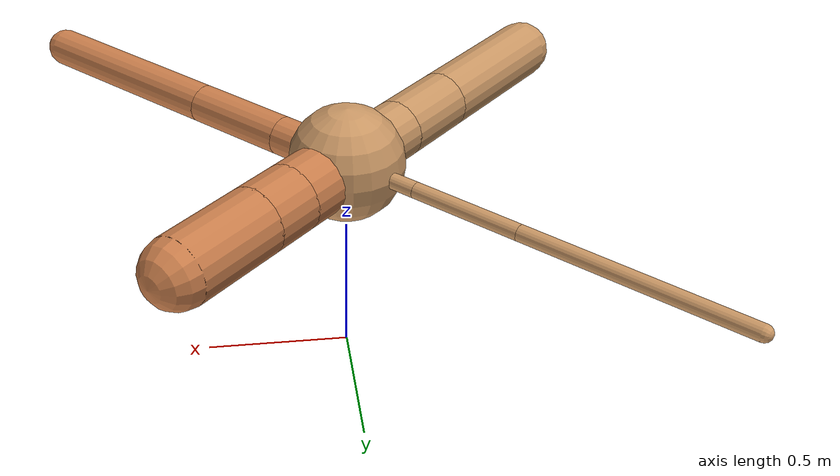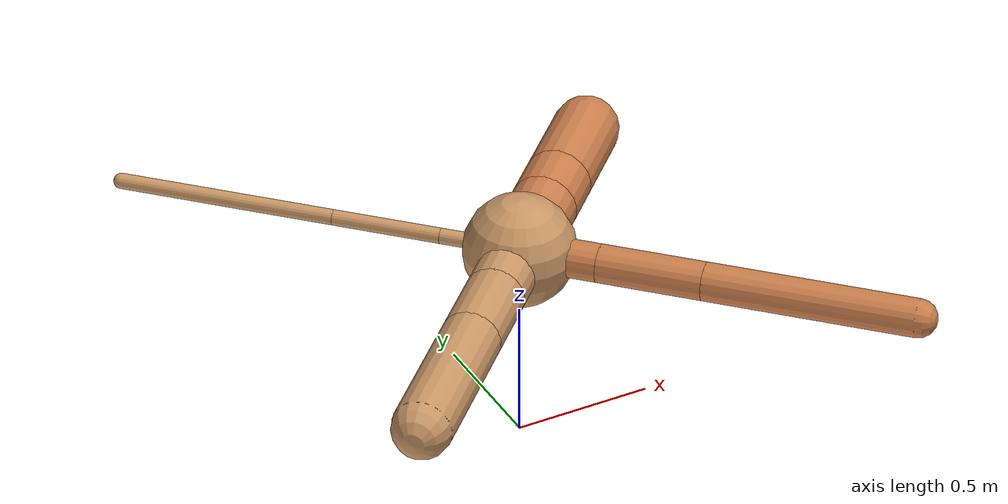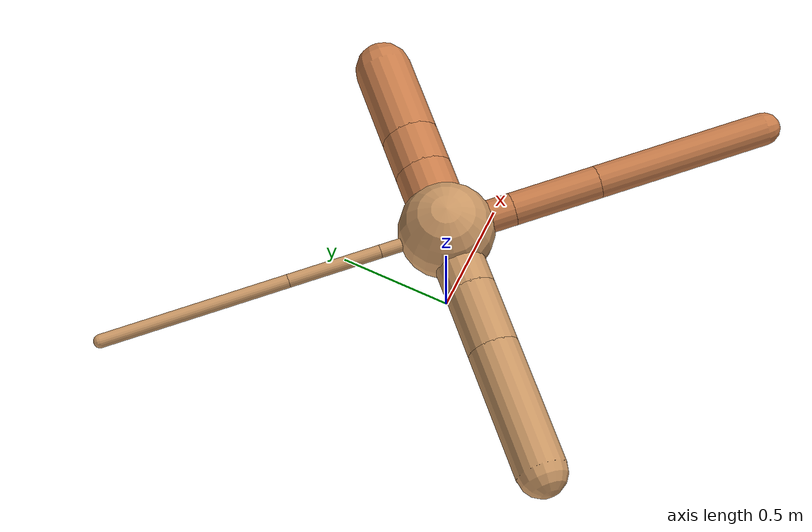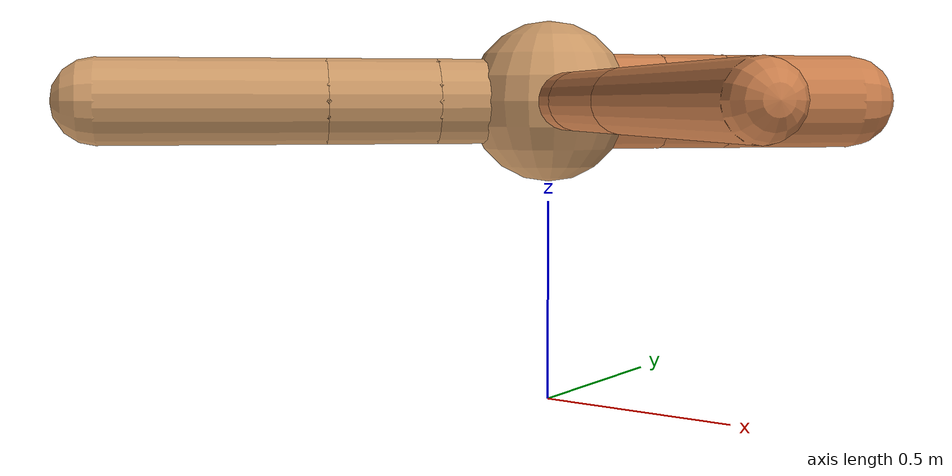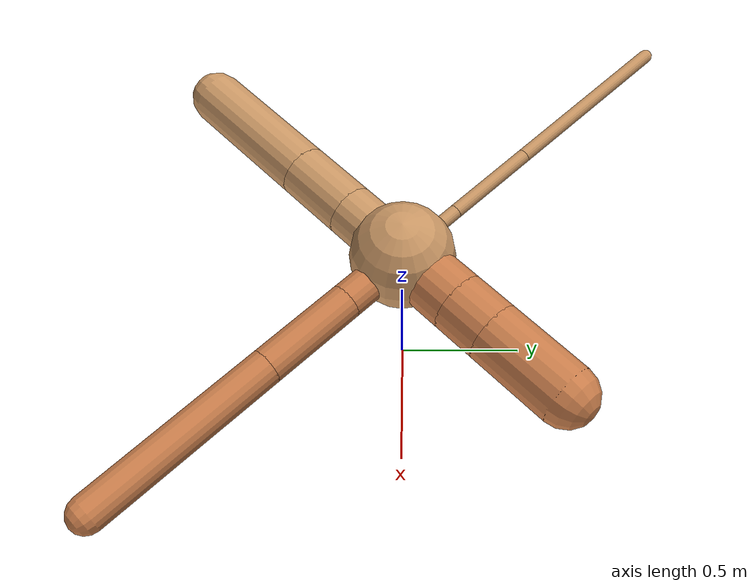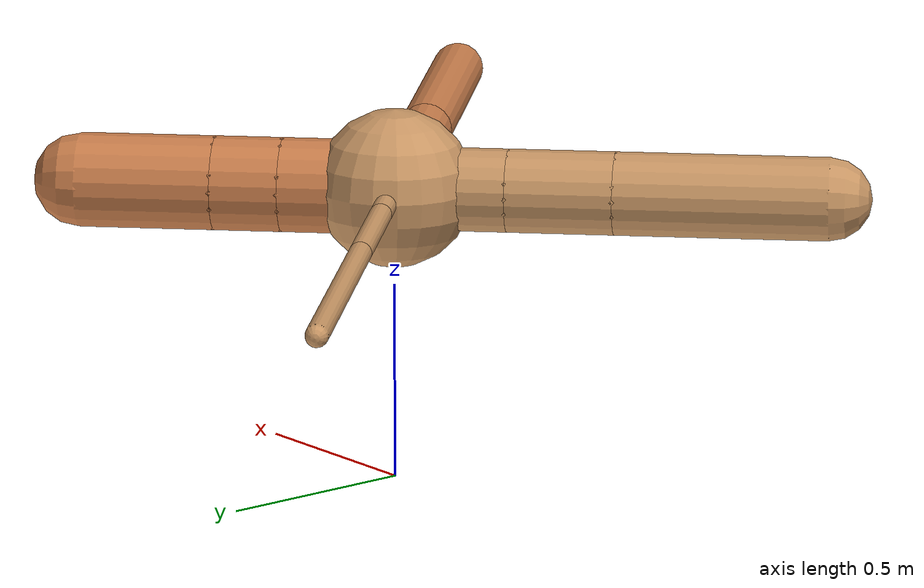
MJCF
<?xml version="1.0" ?>
<mujoco model="ant">

	<compiler angle="degree" coordinate="local" inertiafromgeom="true"/>

	<option integrator="RK4" timestep="0.01"/>

	<custom>

		<numeric data="0.0 0.0 0.55 1.0 0.0 0.0 0.0 0.0 1.0 0.0 -1.0 0.0 -1.0 0.0 1.0" name="init_qpos"/>

	</custom>

	<default>

		<joint armature="1" damping="1" limited="true"/>

		<geom conaffinity="0" condim="3" density="5.0" friction="1.5 0.1 0.1" margin="0.01" rgba="0.8 0.6 0.4 1"/>

	</default>

	<worldbody>

		<body name="torso" pos="0 0 0.75">

			<geom name="torso_geom" pos="0 0 0" size="0.19878786657040742" type="sphere"/>

			<!--joint armature="0" damping="0" limited="false" margin="0.01" name="root" pos="0 0 0" type="free"/-->

			<body name="front_left_leg" pos="0 0 0">

				<geom fromto="0 0 0 0.2 0.2 0" name="aux_1_geom" size="0.11857857079300711" type="capsule" rgba=".8 .5 .3 1"/>

				<body name="aux_1" pos="0.2 0.2 0">

					<joint axis="0 0 1" name="hip_1" pos="0.0 0.0 0.0" range="-40 40" type="hinge"/>

					<geom fromto="0 0 0 0.12037471327817269 0.12037471327817269 0" name="left_leg_geom" size="0.11857857079300711" type="capsule" rgba=".8 .5 .3 1"/>

					<body pos="0.12037471327817269 0.12037471327817269 0" name="front_left_foot">

						<joint axis="-1 1 0" name="ankle_1" pos="0.0 0.0 0.0" range="30 100" type="hinge"/>

						<geom fromto="0 0 0 0.24074942655634538 0.24074942655634538 0" name="left_ankle_geom" size="0.11857857079300711" type="capsule" rgba=".8 .5 .3 1"/>

					</body>

				</body>

			</body>

			<body name="front_right_leg" pos="0 0 0">

				<geom fromto="0 0 0 -0.2 0.2 0" name="aux_2_geom" size="0.027590373709735615" type="capsule"/>

				<body name="aux_2" pos="-0.2 0.2 0">

					<joint axis="0 0 1" name="hip_2" pos="0.0 0.0 0.0" range="-40 40" type="hinge"/>

					<geom fromto="0 0 0 -0.27453685051559246 0.27453685051559246 0" name="right_leg_geom" size="0.027590373709735615" type="capsule"/>

					<body pos="-0.27453685051559246 0.27453685051559246 0" name="front_right_foot">

						<joint axis="1 1 0" name="ankle_2" pos="0.0 0.0 0.0" range="-100 -30" type="hinge"/>

						<geom fromto="0 0 0 -0.5490737010311849 0.5490737010311849 0" name="right_ankle_geom" size="0.027590373709735615" type="capsule"/>

					</body>

				</body>

			</body>

			<body name="left_back_leg" pos="0 0 0">

				<geom fromto="0 0 0 -0.2 -0.2 0" name="aux_3_geom" size="0.10455264429612303" type="capsule"/>

				<body name="aux_3" pos="-0.2 -0.2 0">

					<joint axis="0 0 1" name="hip_3" pos="0.0 0.0 0.0" range="-40 40" type="hinge"/>

					<geom fromto="0 0 0 -0.18946820200916759 -0.18946820200916759 0" name="back_leg_geom" size="0.10455264429612303" type="capsule"/>

					<body pos="-0.18946820200916759 -0.18946820200916759 0" name="left_back_foot">

						<joint axis="-1 1 0" name="ankle_3" pos="0.0 0.0 0.0" range="-100 -30" type="hinge"/>

						<geom fromto="0 0 0 -0.37893640401833517 -0.37893640401833517 0" name="third_ankle_geom" size="0.10455264429612303" type="capsule"/>

					</body>

				</body>

			</body>

			<body name="right_back_leg" pos="0 0 0">

				<geom fromto="0 0 0 0.2 -0.2 0" name="aux_4_geom" size="0.06788413202250639" type="capsule" rgba=".8 .5 .3 1"/>

				<body name="aux_4" pos="0.2 -0.2 0">

					<joint axis="0 0 1" name="hip_4" pos="0.0 0.0 0.0" range="-40 40" type="hinge"/>

					<geom fromto="0 0 0 0.26266470599713915 -0.26266470599713915 0" name="rightback_leg_geom" size="0.06788413202250639" type="capsule" rgba=".8 .5 .3 1"/>

					<body pos="0.26266470599713915 -0.26266470599713915 0" name="right_back_foot">

						<joint axis="1 1 0" name="ankle_4" pos="0.0 0.0 0.0" range="30 100" type="hinge"/>

						<geom fromto="0 0 0 0.5253294119942783 -0.5253294119942783 0" name="fourth_ankle_geom" size="0.06788413202250639" type="capsule" rgba=".8 .5 .3 1"/>

					</body>

				</body>

			</body>

		</body>

	</worldbody>

	<actuator>

		<motor ctrllimited="true" ctrlrange="-1.0 1.0" joint="hip_4" gear="150"/>

		<motor ctrllimited="true" ctrlrange="-1.0 1.0" joint="ankle_4" gear="150"/>

		<motor ctrllimited="true" ctrlrange="-1.0 1.0" joint="hip_1" gear="150"/>

		<motor ctrllimited="true" ctrlrange="-1.0 1.0" joint="ankle_1" gear="150"/>

		<motor ctrllimited="true" ctrlrange="-1.0 1.0" joint="hip_2" gear="150"/>

		<motor ctrllimited="true" ctrlrange="-1.0 1.0" joint="ankle_2" gear="150"/>

		<motor ctrllimited="true" ctrlrange="-1.0 1.0" joint="hip_3" gear="150"/>

		<motor ctrllimited="true" ctrlrange="-1.0 1.0" joint="ankle_3" gear="150"/>

	</actuator>

</mujoco>
